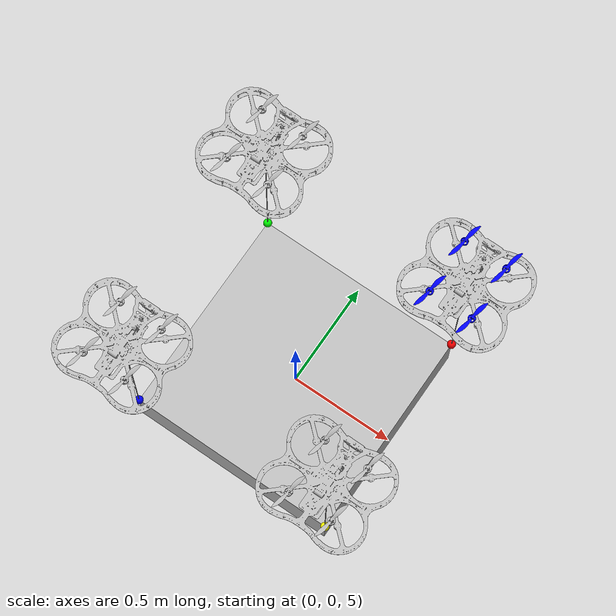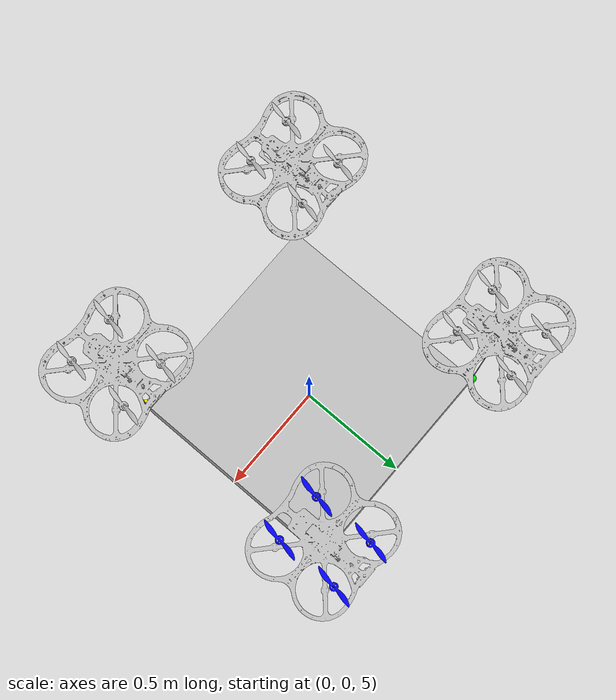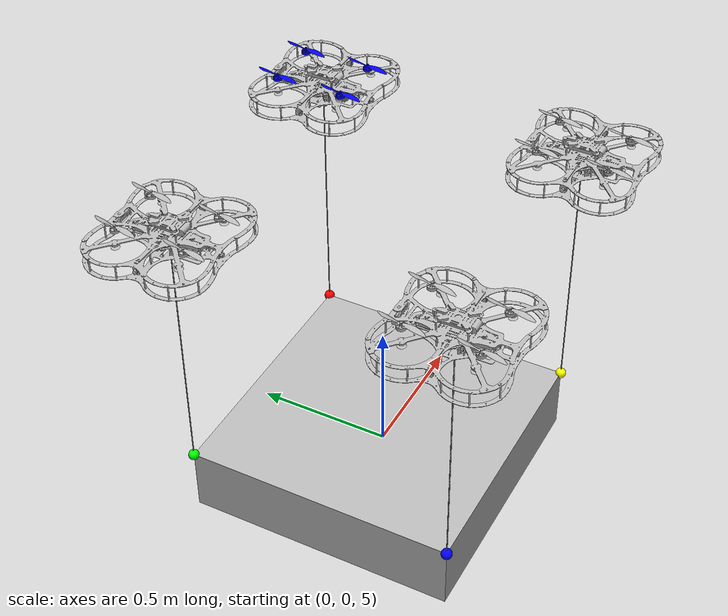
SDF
<sdf version="1.11">
 <world name="coop_transport">
    <!-- Physics: DART -->
    <physics type="dart">
      <max_step_size>0.001</max_step_size>
      <real_time_factor>1.0</real_time_factor>
      <real_time_update_rate>1000</real_time_update_rate>
      <dart>
        <solver><solver_type>dantzig</solver_type></solver>
        <collision_detector>bullet</collision_detector>
      </dart>
    </physics>

    <gravity>0 0 -9.82</gravity>
    <magnetic_field>6e-06 2.3e-05 -4.2e-05</magnetic_field>
    <atmosphere type="adiabatic" />
    <scene>
      <ambient>0.4 0.4 0.4 1</ambient>
      <background>0.7 0.7 0.8 1</background>
      <shadows>false</shadows>
      <sky>
      <sunrise>10</sunrise>
      </sky>
    </scene>
    <light name="sun" type="directional">
      <pose>0 0 10 0 -0 0</pose>
      <cast_shadows>false</cast_shadows>
      <intensity>1</intensity>
      <direction>-0.5 0.1 -0.9</direction>
    </light>
     <light name="lights1" type="directional">
      <pose>0 0 3 0 -0 0</pose>
      <cast_shadows>false</cast_shadows>
      <intensity>1</intensity>
      <direction>0 0 -1</direction>
    </light>
    <light name="lights2" type="directional">
      <pose>1 0 3 0 -0 0</pose>
      <cast_shadows>false</cast_shadows>
      <intensity>1</intensity>
      <direction>0 0 -1</direction>
    </light>

    <light name="lights3" type="directional">
      <pose>-1 0 3 0 -0 0</pose>
      <cast_shadows>false</cast_shadows>
      <intensity>1</intensity>
      <direction>0 0 -1</direction>
    </light>

    <light name="lights4" type="directional">
      <pose>0 1 3 0 -0 0</pose>
      <cast_shadows>false</cast_shadows>
      <intensity>1</intensity>
      <direction>0 0 -1</direction>
    </light>

    <light name="lights5" type="directional">
      <pose>0 1 3 0 -0 0</pose>
      <cast_shadows>false</cast_shadows>
      <intensity>1</intensity>
      <direction>0 0 -1</direction>
    </light>

  <model name="coop_agent">
  <pose>0 0 5.0 0 0 0</pose>
  <self_collide>false</self_collide>
    <static>false</static>
    <enable_wind>1</enable_wind>

    <!-- =========================
         QUADROTOR #1 (at 0.20 0.20 1.9)
         ========================= -->
    <link name="quadrotor1/base_link">
      <pose>0.5  0.5  1.125  0  0  0</pose>
      <inertial>
        <pose>0 0 0 0 0 0</pose>
        <mass>1.52</mass>
        <inertia>
          <ixx>14387108.65e-9</ixx>
          <iyy>16559882.52e-9</iyy>
          <izz>28784890.45e-9</izz>
        </inertia>
      </inertial>
      <collision name="quadrotor1/base_link_inertia_collision_2">
        <pose>0 0 0 0 0 0</pose>
        <geometry><box><size>0.2 0.2 0.05</size></box></geometry>
        <surface><contact><collide_without_contact>1</collide_without_contact></contact></surface>
      </collision>
      <visual name="quadrotor1/base_link_inertia_visual_2">
        <pose>0 0 0 3.1415920000000002 0 0</pose>
        <geometry>
          <mesh>
            <scale>1 1 1</scale>
            <!-- NOTE: ensure meshes are available under this model or fix URI -->
            <uri>model://meshes/QDrone2_Combined.dae</uri>
          </mesh>
        </geometry>
      </visual>
    </link>

    <joint name="quadrotor1/rotor_0_joint" type="revolute">
      <pose relative_to="quadrotor1/base_link">-0.1016 -0.127 0.023 0 0 0</pose>
      <parent>quadrotor1/base_link</parent>
      <child>quadrotor1/rotor_0</child>
      <axis><xyz>0 0 1</xyz><limit><lower>-inf</lower><upper>inf</upper></limit></axis>
    </joint>
    <link name="quadrotor1/rotor_0">
      <pose relative_to="quadrotor1/rotor_0_joint">0 0 0 0 0 0</pose>
      <inertial><pose>0 0 0 0 0 0</pose><mass>0.005</mass>
        <inertia><ixx>1.95e-07</ixx><iyy>3.3340833333333338e-05</iyy><izz>3.3520833333333339e-05</izz></inertia>
      </inertial>
      <collision name="quadrotor1/rotor_0_collision"><geometry><cylinder><length>0.005</length><radius>0.1</radius></cylinder></geometry></collision>
      <visual name="quadrotor1/rotor_0_visual">
        <geometry><mesh><scale>1 1 1</scale><uri>model://meshes/motor_prop_assembly.dae</uri></mesh></geometry>
        <material><ambient>0 0 1 1</ambient><diffuse>0 0 1 1</diffuse><specular>0.1 0.1 0.1 1</specular></material>
      </visual>
    </link>

    <joint name="quadrotor1/rotor_1_joint" type="revolute">
      <pose relative_to="quadrotor1/base_link">0.1016 -0.127 0.023 0 0 0</pose>
      <parent>quadrotor1/base_link</parent>
      <child>quadrotor1/rotor_1</child>
      <axis><xyz>0 0 1</xyz><limit><lower>-inf</lower><upper>inf</upper></limit></axis>
    </joint>
    <link name="quadrotor1/rotor_1">
      <pose relative_to="quadrotor1/rotor_1_joint">0 0 0 0 0 0</pose>
      <inertial><pose>0 0 0 0 0 0</pose><mass>0.005</mass>
        <inertia><ixx>1.95e-07</ixx><iyy>3.3340833333333338e-05</iyy><izz>3.3520833333333339e-05</izz></inertia>
      </inertial>
      <collision name="quadrotor1/rotor_1_collision"><geometry><cylinder><length>0.005</length><radius>0.1</radius></cylinder></geometry></collision>
      <visual name="quadrotor1/rotor_1_visual">
        <geometry><mesh><scale>1 1 1</scale><uri>model://meshes/motor_prop_assembly.dae</uri></mesh></geometry>
        <material><ambient>0 0 1 1</ambient><diffuse>0 0 1 1</diffuse><specular>0.1 0.1 0.1 1</specular></material>
      </visual>
    </link>

    <joint name="quadrotor1/rotor_2_joint" type="revolute">
      <pose relative_to="quadrotor1/base_link">-0.1016 0.127 0.023 0 0 0</pose>
      <parent>quadrotor1/base_link</parent>
      <child>quadrotor1/rotor_2</child>
      <axis><xyz>0 0 1</xyz><limit><lower>-inf</lower><upper>inf</upper></limit></axis>
    </joint>
    <link name="quadrotor1/rotor_2">
      <pose relative_to="quadrotor1/rotor_2_joint">0 0 0 0 0 0</pose>
      <inertial><pose>0 0 0 0 0 0</pose><mass>0.005</mass>
        <inertia><ixx>1.95e-07</ixx><iyy>3.3340833333333338e-05</iyy><izz>3.3520833333333339e-05</izz></inertia>
      </inertial>
      <collision name="quadrotor1/rotor_2_collision"><geometry><cylinder><length>0.005</length><radius>0.1</radius></cylinder></geometry></collision>
      <visual name="quadrotor1/rotor_2_visual">
        <geometry><mesh><scale>1 1 1</scale><uri>model://meshes/motor_prop_assembly.dae</uri></mesh></geometry>
        <material><ambient>0 0 1 1</ambient><diffuse>0 0 1 1</diffuse><specular>0.1 0.1 0.1 1</specular></material>
      </visual>
    </link>

    <joint name="quadrotor1/rotor_3_joint" type="revolute">
      <pose relative_to="quadrotor1/base_link">0.1016 0.127 0.023 0 0 0</pose>
      <parent>quadrotor1/base_link</parent>
      <child>quadrotor1/rotor_3</child>
      <axis><xyz>0 0 1</xyz><limit><lower>-inf</lower><upper>inf</upper></limit></axis>
    </joint>
    <link name="quadrotor1/rotor_3">
      <pose relative_to="quadrotor1/rotor_3_joint">0 0 0 0 0 0</pose>
      <inertial><pose>0 0 0 0 0 0</pose><mass>0.005</mass>
        <inertia><ixx>1.95e-07</ixx><iyy>3.3340833333333338e-05</iyy><izz>3.3520833333333339e-05</izz></inertia>
      </inertial>
      <collision name="quadrotor1/rotor_3_collision"><geometry><cylinder><length>0.005</length><radius>0.1</radius></cylinder></geometry></collision>
      <visual name="quadrotor1/rotor_3_visual">
        <geometry><mesh><scale>1 1 1</scale><uri>model://meshes/motor_prop_assembly.dae</uri></mesh></geometry>
        <material><ambient>0 0 1 1</ambient><diffuse>0 0 1 1</diffuse><specular>0.1 0.1 0.1 1</specular></material>
      </visual>
    </link>

    <plugin name='gz::sim::systems::MultiRotorPlugin' filename='rotor_plugin'>
      <parentLink>quadrotor1/base_link</parentLink>
      <linkNames>quadrotor1/rotor_0 quadrotor1/rotor_1 quadrotor1/rotor_2 quadrotor1/rotor_3</linkNames>
      <turningDirections>1 -1 -1 1</turningDirections>
      <timeConstantUp>0.0005</timeConstantUp>
      <timeConstantDown>0.005</timeConstantDown>
      <maxRotVelocity>2340.0</maxRotVelocity>
      <thrustConstantQuadraticParams>1.9533e-6 0 0</thrustConstantQuadraticParams>

      <groundEffectConstant>1.17198e-09</groundEffectConstant>
      <momentConstantQuadraticParams>2.8400982e-08  0 0</momentConstantQuadraticParams>
      <downWashCoefficients>0.0 0.0 0.0</downWashCoefficients>
      <otherUavNames></otherUavNames>
      <rotorInertia>4.92e-6</rotorInertia>
      <rotorDragCoefficient>0.000020673</rotorDragCoefficient>
      <rollingMomentCoefficient>1e-9</rollingMomentCoefficient>

      <rotorVelocitySlowdownSim>2</rotorVelocitySlowdownSim>

    </plugin>
    <!-- =========================
         QUADROTOR #2 (at -0.20 0.20 1.9)
         ========================= -->
    <link name="quadrotor2/base_link">
       <pose>-0.5  0.5  1.125  0  0  0 </pose>
      <inertial><pose>0 0 0 0 0 0</pose><mass>1.52</mass>
        <inertia><ixx>14387108.65e-9</ixx><iyy>16559882.52e-9</iyy><izz>28784890.45e-9</izz></inertia>
      </inertial>
      <collision name="quadrotor2/base_link_inertia_collision_2">
        <pose>0 0 0 0 0 0</pose>
        <geometry><box><size>0.2 0.2 0.05</size></box></geometry>
        <surface><contact><collide_without_contact>1</collide_without_contact></contact></surface>
      </collision>
      <visual name="quadrotor2/base_link_inertia_visual_2">
        <pose>0 0 0 3.1415920000000002 0 0</pose>
        <geometry><mesh><scale>1 1 1</scale><uri>model://meshes/QDrone2_Combined.dae</uri></mesh></geometry>
      </visual>
    </link>
    <joint name="quadrotor2/rotor_0_joint" type="revolute">
      <pose relative_to="quadrotor2/base_link">-0.1016 -0.127 0.023 0 0 0</pose>
      <parent>quadrotor2/base_link</parent><child>quadrotor2/rotor_0</child>
      <axis><xyz>0 0 1</xyz><limit><lower>-inf</lower><upper>inf</upper></limit></axis>
    </joint>
    <link name="quadrotor2/rotor_0">
      <pose relative_to="quadrotor2/rotor_0_joint">0 0 0 0 0 0</pose>
      <inertial><pose>0 0 0 0 0 0</pose><mass>0.005</mass>
        <inertia><ixx>1.95e-07</ixx><iyy>3.3340833333333338e-05</iyy><izz>3.3520833333333339e-05</izz></inertia>
      </inertial>
      <collision name="quadrotor2/rotor_0_collision"><geometry><cylinder><length>0.005</length><radius>0.1</radius></cylinder></geometry></collision>
      <visual name="quadrotor2/rotor_0_visual"><geometry><mesh><scale>1 1 1</scale><uri>model://meshes/motor_prop_assembly.dae</uri></mesh></geometry></visual>
    </link>
    <joint name="quadrotor2/rotor_1_joint" type="revolute">
      <pose relative_to="quadrotor2/base_link">0.1016 -0.127 0.023 0 0 0</pose>
      <parent>quadrotor2/base_link</parent><child>quadrotor2/rotor_1</child>
      <axis><xyz>0 0 1</xyz><limit><lower>-inf</lower><upper>inf</upper></limit></axis>
    </joint>
    <link name="quadrotor2/rotor_1">
      <pose relative_to="quadrotor2/rotor_1_joint">0 0 0 0 0 0</pose>
      <inertial><pose>0 0 0 0 0 0</pose><mass>0.005</mass>
        <inertia><ixx>1.95e-07</ixx><iyy>3.3340833333333338e-05</iyy><izz>3.3520833333333339e-05</izz></inertia>
      </inertial>
      <collision name="quadrotor2/rotor_1_collision"><geometry><cylinder><length>0.005</length><radius>0.1</radius></cylinder></geometry></collision>
      <visual name="quadrotor2/rotor_1_visual"><geometry><mesh><scale>1 1 1</scale><uri>model://meshes/motor_prop_assembly.dae</uri></mesh></geometry></visual>
    </link>
    <joint name="quadrotor2/rotor_2_joint" type="revolute">
      <pose relative_to="quadrotor2/base_link">-0.1016 0.127 0.023 0 0 0</pose>
      <parent>quadrotor2/base_link</parent><child>quadrotor2/rotor_2</child>
      <axis><xyz>0 0 1</xyz><limit><lower>-inf</lower><upper>inf</upper></limit></axis>
    </joint>
    <link name="quadrotor2/rotor_2">
      <pose relative_to="quadrotor2/rotor_2_joint">0 0 0 0 0 0</pose>
      <inertial><pose>0 0 0 0 0 0</pose><mass>0.005</mass>
        <inertia><ixx>1.95e-07</ixx><iyy>3.3340833333333338e-05</iyy><izz>3.3520833333333339e-05</izz></inertia>
      </inertial>
      <collision name="quadrotor2/rotor_2_collision"><geometry><cylinder><length>0.005</length><radius>0.1</radius></cylinder></geometry></collision>
      <visual name="quadrotor2/rotor_2_visual"><geometry><mesh><scale>1 1 1</scale><uri>model://meshes/motor_prop_assembly.dae</uri></mesh></geometry></visual>
    </link>
    <joint name="quadrotor2/rotor_3_joint" type="revolute">
      <pose relative_to="quadrotor2/base_link">0.1016 0.127 0.023 0 0 0</pose>
      <parent>quadrotor2/base_link</parent><child>quadrotor2/rotor_3</child>
      <axis><xyz>0 0 1</xyz><limit><lower>-inf</lower><upper>inf</upper></limit></axis>
    </joint>
    <link name="quadrotor2/rotor_3">
      <pose relative_to="quadrotor2/rotor_3_joint">0 0 0 0 0 0</pose>
      <inertial><pose>0 0 0 0 0 0</pose><mass>0.005</mass>
        <inertia><ixx>1.95e-07</ixx><iyy>3.3340833333333338e-05</iyy><izz>3.3520833333333339e-05</izz></inertia>
      </inertial>
      <collision name="quadrotor2/rotor_3_collision"><geometry><cylinder><length>0.005</length><radius>0.1</radius></cylinder></geometry></collision>
      <visual name="quadrotor2/rotor_3_visual"><geometry><mesh><scale>1 1 1</scale><uri>model://meshes/motor_prop_assembly.dae</uri></mesh></geometry></visual>
    </link>
    <!-- Plugins for quadrotor #2 -->
    <plugin name='gz::sim::systems::MultiRotorPlugin' filename='rotor_plugin'>
      <parentLink>quadrotor2/base_link</parentLink>
      <linkNames>quadrotor2/rotor_0 quadrotor2/rotor_1 quadrotor2/rotor_2 quadrotor2/rotor_3</linkNames>
      <turningDirections>1 -1 -1 1</turningDirections>
      <timeConstantUp>0.0005</timeConstantUp>
      <timeConstantDown>0.005</timeConstantDown>
      <maxRotVelocity>2340.0</maxRotVelocity>
      <thrustConstantQuadraticParams>1.9533e-6 0 0</thrustConstantQuadraticParams>

      <groundEffectConstant>1.17198e-09</groundEffectConstant>
      <momentConstantQuadraticParams>2.8400982e-08  0 0</momentConstantQuadraticParams>
      <downWashCoefficients>0.0 0.0 0.0</downWashCoefficients>
      <otherUavNames></otherUavNames>
      <rotorInertia>4.92e-6</rotorInertia>
      <rotorDragCoefficient>0.000020673</rotorDragCoefficient>
      <rollingMomentCoefficient>1e-9</rollingMomentCoefficient>

      <rotorVelocitySlowdownSim>2</rotorVelocitySlowdownSim>

    </plugin>
    <!-- =========================
         QUADROTOR #3 (at -0.20 -0.20 1.9)
         ========================= -->
    <link name="quadrotor3/base_link">
     <pose>-0.5  -0.5  1.125  0  0  0</pose>
      <inertial><pose>0 0 0 0 0 0</pose><mass>1.52</mass>
        <inertia><ixx>14387108.65e-9</ixx><iyy>16559882.52e-9</iyy><izz>28784890.45e-9</izz></inertia>
      </inertial>
      <collision name="quadrotor3/base_link_inertia_collision_2">
        <pose>0 0 0 0 0 0</pose>
        <geometry><box><size>0.2 0.2 0.05</size></box></geometry>
        <surface><contact><collide_without_contact>1</collide_without_contact></contact></surface>
      </collision>
      <visual name="quadrotor3/base_link_inertia_visual_2">
        <pose>0 0 0 3.1415920000000002 0 0</pose>
        <geometry><mesh><scale>1 1 1</scale><uri>model://meshes/QDrone2_Combined.dae</uri></mesh></geometry>
      </visual>
    </link>
    <joint name="quadrotor3/rotor_0_joint" type="revolute">
      <pose relative_to="quadrotor3/base_link">-0.1016 -0.127 0.023 0 0 0</pose>
      <parent>quadrotor3/base_link</parent><child>quadrotor3/rotor_0</child>
      <axis><xyz>0 0 1</xyz><limit><lower>-inf</lower><upper>inf</upper></limit></axis>
    </joint>
    <link name="quadrotor3/rotor_0">
      <pose relative_to="quadrotor3/rotor_0_joint">0 0 0 0 0 0</pose>
      <inertial><pose>0 0 0 0 0 0</pose><mass>0.005</mass>
        <inertia><ixx>1.95e-07</ixx><iyy>3.3340833333333338e-05</iyy><izz>3.3520833333333339e-05</izz></inertia>
      </inertial>
      <collision name="quadrotor3/rotor_0_collision"><geometry><cylinder><length>0.005</length><radius>0.1</radius></cylinder></geometry></collision>
      <visual name="quadrotor3/rotor_0_visual"><geometry><mesh><scale>1 1 1</scale><uri>model://meshes/motor_prop_assembly.dae</uri></mesh></geometry></visual>
    </link>
    <joint name="quadrotor3/rotor_1_joint" type="revolute">
      <pose relative_to="quadrotor3/base_link">0.1016 -0.127 0.023 0 0 0</pose>
      <parent>quadrotor3/base_link</parent><child>quadrotor3/rotor_1</child>
      <axis><xyz>0 0 1</xyz><limit><lower>-inf</lower><upper>inf</upper></limit></axis>
    </joint>
    <link name="quadrotor3/rotor_1">
      <pose relative_to="quadrotor3/rotor_1_joint">0 0 0 0 0 0</pose>
      <inertial><pose>0 0 0 0 0 0</pose><mass>0.005</mass>
        <inertia><ixx>1.95e-07</ixx><iyy>3.3340833333333338e-05</iyy><izz>3.3520833333333339e-05</izz></inertia>
      </inertial>
      <collision name="quadrotor3/rotor_1_collision"><geometry><cylinder><length>0.005</length><radius>0.1</radius></cylinder></geometry></collision>
      <visual name="quadrotor3/rotor_1_visual"><geometry><mesh><scale>1 1 1</scale><uri>model://meshes/motor_prop_assembly.dae</uri></mesh></geometry></visual>
    </link>
    <joint name="quadrotor3/rotor_2_joint" type="revolute">
      <pose relative_to="quadrotor3/base_link">-0.1016 0.127 0.023 0 0 0</pose>
      <parent>quadrotor3/base_link</parent><child>quadrotor3/rotor_2</child>
      <axis><xyz>0 0 1</xyz><limit><lower>-inf</lower><upper>inf</upper></limit></axis>
    </joint>
    <link name="quadrotor3/rotor_2">
      <pose relative_to="quadrotor3/rotor_2_joint">0 0 0 0 0 0</pose>
      <inertial><pose>0 0 0 0 0 0</pose><mass>0.005</mass>
        <inertia><ixx>1.95e-07</ixx><iyy>3.3340833333333338e-05</iyy><izz>3.3520833333333339e-05</izz></inertia>
      </inertial>
      <collision name="quadrotor3/rotor_2_collision"><geometry><cylinder><length>0.005</length><radius>0.1</radius></cylinder></geometry></collision>
      <visual name="quadrotor3/rotor_2_visual"><geometry><mesh><scale>1 1 1</scale><uri>model://meshes/motor_prop_assembly.dae</uri></mesh></geometry></visual>
    </link>
    <joint name="quadrotor3/rotor_3_joint" type="revolute">
      <pose relative_to="quadrotor3/base_link">0.1016 0.127 0.023 0 0 0</pose>
      <parent>quadrotor3/base_link</parent><child>quadrotor3/rotor_3</child>
      <axis><xyz>0 0 1</xyz><limit><lower>-inf</lower><upper>inf</upper></limit></axis>
    </joint>
    <link name="quadrotor3/rotor_3">
      <pose relative_to="quadrotor3/rotor_3_joint">0 0 0 0 0 0</pose>
      <inertial><pose>0 0 0 0 0 0</pose><mass>0.005</mass>
        <inertia><ixx>1.95e-07</ixx><iyy>3.3340833333333338e-05</iyy><izz>3.3520833333333339e-05</izz></inertia>
      </inertial>
      <collision name="quadrotor3/rotor_3_collision"><geometry><cylinder><length>0.005</length><radius>0.1</radius></cylinder></geometry></collision>
      <visual name="quadrotor3/rotor_3_visual"><geometry><mesh><scale>1 1 1</scale><uri>model://meshes/motor_prop_assembly.dae</uri></mesh></geometry></visual>
    </link>
    <!-- Plugins for quadrotor #3 -->
    <plugin name='gz::sim::systems::MultiRotorPlugin' filename='rotor_plugin'>
      <parentLink>quadrotor3/base_link</parentLink>
      <linkNames>quadrotor3/rotor_0 quadrotor3/rotor_1 quadrotor3/rotor_2 quadrotor3/rotor_3</linkNames>
      <turningDirections>1 -1 -1 1</turningDirections>
      <timeConstantUp>0.0005</timeConstantUp>
      <timeConstantDown>0.005</timeConstantDown>
      <maxRotVelocity>2340.0</maxRotVelocity>
      <thrustConstantQuadraticParams>1.9533e-6 0 0</thrustConstantQuadraticParams>

      <groundEffectConstant>1.17198e-09</groundEffectConstant>
      <momentConstantQuadraticParams>2.8400982e-08  0 0</momentConstantQuadraticParams>
      <downWashCoefficients>0.0 0.0 0.0</downWashCoefficients>
      <otherUavNames></otherUavNames>
      <rotorInertia>4.92e-6</rotorInertia>
      <rotorDragCoefficient>0.000020673</rotorDragCoefficient>
      <rollingMomentCoefficient>1e-9</rollingMomentCoefficient>

      <rotorVelocitySlowdownSim>2</rotorVelocitySlowdownSim>

    </plugin>
    <!-- =========================
         QUADROTOR #4 (at 0.20 -0.20 1.9)
         ========================= -->
    <link name="quadrotor4/base_link">
      <pose>0.5  -0.5  1.125  0  0  0</pose>
      <inertial><pose>0 0 0 0 0 0</pose><mass>1.52</mass>
        <inertia><ixx>14387108.65e-9</ixx><iyy>16559882.52e-9</iyy><izz>28784890.45e-9</izz></inertia>
      </inertial>
      <collision name="quadrotor4/base_link_inertia_collision_2">
        <pose>0 0 0 0 0 0</pose>
        <geometry><box><size>0.2 0.2 0.05</size></box></geometry>
        <surface><contact><collide_without_contact>1</collide_without_contact></contact></surface>
      </collision>
      <visual name="quadrotor4/base_link_inertia_visual_2">
        <pose>0 0 0 3.1415920000000002 0 0</pose>
        <geometry><mesh><scale>1 1 1</scale><uri>model://meshes/QDrone2_Combined.dae</uri></mesh></geometry>
      </visual>
    </link>
    <joint name="quadrotor4/rotor_0_joint" type="revolute">
      <pose relative_to="quadrotor4/base_link">-0.1016 -0.127 0.023 0 0 0</pose>
      <parent>quadrotor4/base_link</parent><child>quadrotor4/rotor_0</child>
      <axis><xyz>0 0 1</xyz><limit><lower>-inf</lower><upper>inf</upper></limit></axis>
    </joint>
    <link name="quadrotor4/rotor_0">
      <pose relative_to="quadrotor4/rotor_0_joint">0 0 0 0 0 0</pose>
      <inertial><pose>0 0 0 0 0 0</pose><mass>0.005</mass>
        <inertia><ixx>1.95e-07</ixx><iyy>3.3340833333333338e-05</iyy><izz>3.3520833333333339e-05</izz></inertia>
      </inertial>
      <collision name="quadrotor4/rotor_0_collision"><geometry><cylinder><length>0.005</length><radius>0.1</radius></cylinder></geometry></collision>
      <visual name="quadrotor4/rotor_0_visual"><geometry><mesh><scale>1 1 1</scale><uri>model://meshes/motor_prop_assembly.dae</uri></mesh></geometry></visual>
    </link>
    <joint name="quadrotor4/rotor_1_joint" type="revolute">
      <pose relative_to="quadrotor4/base_link">0.1016 -0.127 0.023 0 0 0</pose>
      <parent>quadrotor4/base_link</parent><child>quadrotor4/rotor_1</child>
      <axis><xyz>0 0 1</xyz><limit><lower>-inf</lower><upper>inf</upper></limit></axis>
    </joint>
    <link name="quadrotor4/rotor_1">
      <pose relative_to="quadrotor4/rotor_1_joint">0 0 0 0 0 0</pose>
      <inertial><pose>0 0 0 0 0 0</pose><mass>0.005</mass>
        <inertia><ixx>1.95e-07</ixx><iyy>3.3340833333333338e-05</iyy><izz>3.3520833333333339e-05</izz></inertia>
      </inertial>
      <collision name="quadrotor4/rotor_1_collision"><geometry><cylinder><length>0.005</length><radius>0.1</radius></cylinder></geometry></collision>
      <visual name="quadrotor4/rotor_1_visual"><geometry><mesh><scale>1 1 1</scale><uri>model://meshes/motor_prop_assembly.dae</uri></mesh></geometry></visual>
    </link>
    <joint name="quadrotor4/rotor_2_joint" type="revolute">
      <pose relative_to="quadrotor4/base_link">-0.1016 0.127 0.023 0 0 0</pose>
      <parent>quadrotor4/base_link</parent><child>quadrotor4/rotor_2</child>
      <axis><xyz>0 0 1</xyz><limit><lower>-inf</lower><upper>inf</upper></limit></axis>
    </joint>
    <link name="quadrotor4/rotor_2">
      <pose relative_to="quadrotor4/rotor_2_joint">0 0 0 0 0 0</pose>
      <inertial><pose>0 0 0 0 0 0</pose><mass>0.005</mass>
        <inertia><ixx>1.95e-07</ixx><iyy>3.3340833333333338e-05</iyy><izz>3.3520833333333339e-05</izz></inertia>
      </inertial>
      <collision name="quadrotor4/rotor_2_collision"><geometry><cylinder><length>0.005</length><radius>0.1</radius></cylinder></geometry></collision>
      <visual name="quadrotor4/rotor_2_visual"><geometry><mesh><scale>1 1 1</scale><uri>model://meshes/motor_prop_assembly.dae</uri></mesh></geometry></visual>
    </link>
    <joint name="quadrotor4/rotor_3_joint" type="revolute">
      <pose relative_to="quadrotor4/base_link">0.1016 0.127 0.023 0 0 0</pose>
      <parent>quadrotor4/base_link</parent><child>quadrotor4/rotor_3</child>
      <axis><xyz>0 0 1</xyz><limit><lower>-inf</lower><upper>inf</upper></limit></axis>
    </joint>
    <link name="quadrotor4/rotor_3">
      <pose relative_to="quadrotor4/rotor_3_joint">0 0 0 0 0 0</pose>
      <inertial><pose>0 0 0 0 0 0</pose><mass>0.005</mass>
        <inertia><ixx>1.95e-07</ixx><iyy>3.3340833333333338e-05</iyy><izz>3.3520833333333339e-05</izz></inertia>
      </inertial>
      <collision name="quadrotor4/rotor_3_collision"><geometry><cylinder><length>0.005</length><radius>0.1</radius></cylinder></geometry></collision>
      <visual name="quadrotor4/rotor_3_visual"><geometry><mesh><scale>1 1 1</scale><uri>model://meshes/motor_prop_assembly.dae</uri></mesh></geometry></visual>
    </link>
    <!-- Plugins for quadrotor #4 -->
  <plugin name='gz::sim::systems::MultiRotorPlugin' filename='rotor_plugin'>
      <parentLink>quadrotor4/base_link</parentLink>
      <linkNames>quadrotor4/rotor_0 quadrotor4/rotor_1 quadrotor4/rotor_2 quadrotor4/rotor_3</linkNames>
      <turningDirections>1 -1 -1 1</turningDirections>
      <timeConstantUp>0.0005</timeConstantUp>
      <timeConstantDown>0.005</timeConstantDown>
      <maxRotVelocity>2340.0</maxRotVelocity>
      <thrustConstantQuadraticParams>1.9533e-6 0 0</thrustConstantQuadraticParams>

      <groundEffectConstant>1.17198e-09</groundEffectConstant>
      <momentConstantQuadraticParams>2.8400982e-08  0 0</momentConstantQuadraticParams>
      <downWashCoefficients>0.0 0.0 0.0</downWashCoefficients>
      <otherUavNames></otherUavNames>
      <rotorInertia>4.92e-6</rotorInertia>
      <rotorDragCoefficient>0.000020673</rotorDragCoefficient>
      <rollingMomentCoefficient>1e-9</rollingMomentCoefficient>

      <rotorVelocitySlowdownSim>2</rotorVelocitySlowdownSim>

    </plugin>
    <!-- =========================
         PAYLOAD (links only; origin frame below)
         ========================= -->
    <frame name="payload_base" attached_to="__model__">
      <pose>0 0 0.0 0 0 0</pose>
    </frame>

    <link name="payload_box_link">
      <pose relative_to="payload_base">0 0 0 0 0 0</pose>
      <inertial>
        <mass>0.5</mass>
        <inertia><ixx>0.04427</ixx><iyy>0.04427</iyy><izz>0.083</izz></inertia>
      </inertial>
      <collision name="payload_col"><geometry><box><size>1.0 1.0 0.25</size></box></geometry></collision>
      <visual name="payload_vis"><geometry><box><size>1.0 1.0 0.25</size></box></geometry></visual>
    </link>

    <link name="corner1">
      <pose relative_to="payload_base">0.5 0.5 0.125 0 0 0</pose>
      <inertial><mass>0.001</mass><inertia><ixx>1e-6</ixx><iyy>1e-6</iyy><izz>1e-6</izz></inertia></inertial>
      <visual name="vis_corner1"><geometry><sphere><radius>0.02</radius></sphere></geometry><material><ambient>1 0 0 1</ambient></material></visual>
    </link>
    <link name="corner2">
      <pose relative_to="payload_base">-0.5 0.5 0.125 0 0 0</pose>
      <inertial><mass>0.001</mass><inertia><ixx>1e-6</ixx><iyy>1e-6</iyy><izz>1e-6</izz></inertia></inertial>
      <visual name="vis_corner2"><geometry><sphere><radius>0.02</radius></sphere></geometry><material><ambient>0 1 0 1</ambient></material></visual>
    </link>
    <link name="corner3">
      <pose relative_to="payload_base">-0.5 -0.5 0.125 0 0 0</pose>
      <inertial><mass>0.001</mass><inertia><ixx>1e-6</ixx><iyy>1e-6</iyy><izz>1e-6</izz></inertia></inertial>
      <visual name="vis_corner3"><geometry><sphere><radius>0.02</radius></sphere></geometry><material><ambient>0 0 1 1</ambient></material></visual>
    </link>
    <link name="corner4">
      <pose relative_to="payload_base">0.5 -0.5 0.125 0 0 0</pose>
      <inertial><mass>0.001</mass><inertia><ixx>1e-6</ixx><iyy>1e-6</iyy><izz>1e-6</izz></inertia></inertial>
      <visual name="vis_corner4"><geometry><sphere><radius>0.02</radius></sphere></geometry><material><ambient>1 1 0 1</ambient></material></visual>

    </link>
<joint name="corner1_to_payload" type="fixed">
      <parent>payload_box_link</parent>
      <child>corner1</child>
    </joint>
    <joint name="corner2_to_payload" type="fixed">
      <parent>payload_box_link</parent>
      <child>corner2</child>
    </joint>
    <joint name="corner3_to_payload" type="fixed">
      <parent>payload_box_link</parent>
      <child>corner3</child>
    </joint>
    <joint name="corner4_to_payload" type="fixed">
      <parent>payload_box_link</parent>
      <child>corner4</child>
    </joint>
    <!-- =========================
         TETHERS (as links)
         ========================= -->
    <link name="tether1_link">
      <pose>0.5  0.5  0.625  0  0  0</pose>
      <inertial><mass>0.006</mass><inertia><ixx>5e-4</ixx><iyy>5e-4</iyy><izz>1.20e-8</izz></inertia></inertial>
      <collision name="tether1_col">
        <geometry><cylinder><radius>0.002</radius><length>1</length></cylinder></geometry>
        <surface><contact><collide_bitmask>0x00</collide_bitmask></contact></surface>
      </collision>
      <visual name="tether1_vis">
        <geometry><cylinder><radius>0.002</radius><length>1</length></cylinder></geometry>
      </visual>
    </link>

    <link name="tether2_link">
      <pose>-0.5  0.5  0.625  0  0  0</pose>
      <inertial><mass>0.006</mass><inertia><ixx>5e-4</ixx><iyy>5e-4</iyy><izz>1.20e-8</izz></inertia></inertial>
      <collision name="tether2_col"><geometry><cylinder><radius>0.002</radius><length>1</length></cylinder></geometry><surface><contact><collide_bitmask>0x00</collide_bitmask></contact></surface></collision>
      <visual name="tether2_vis"><geometry><cylinder><radius>0.002</radius><length>1</length></cylinder></geometry></visual>
    </link>

    <link name="tether3_link">
      <pose>-0.5  -0.5  0.625  0  0  0</pose>
      <inertial><mass>0.006</mass><inertia><ixx>5e-4</ixx><iyy>5e-4</iyy><izz>1.20e-8</izz></inertia></inertial>
      <collision name="tether3_col"><geometry><cylinder><radius>0.002</radius><length>1</length></cylinder></geometry><surface><contact><collide_bitmask>0x00</collide_bitmask></contact></surface></collision>
      <visual name="tether3_vis"><geometry><cylinder><radius>0.002</radius><length>1</length></cylinder></geometry></visual>
    </link>

    <link name="tether4_link">
      <pose>0.5  -0.5  0.625  0  0  0</pose>
      <inertial><mass>0.006</mass><inertia><ixx>5e-4</ixx><iyy>5e-4</iyy><izz>1.20e-8</izz></inertia></inertial>
      <collision name="tether4_col"><geometry><cylinder><radius>0.002</radius><length>1</length></cylinder></geometry><surface><contact><collide_bitmask>0x00</collide_bitmask></contact></surface></collision>
      <visual name="tether4_vis"><geometry><cylinder><radius>0.002</radius><length>1</length></cylinder></geometry></visual>
    </link>

    <!-- =========================
         BALL JOINTS (top/bottom per tether)
         ========================= -->
    <!-- Tether 1 -->
    <joint name="t1_top" type="ball">
      <child>quadrotor1/base_link</child>
      <parent>tether1_link</parent>
      <pose relative_to="tether1_link">0 0 0.5 0 0 0</pose>
    </joint>
    <joint name="t1_bottom" type="fixed">
      <child>tether1_link</child>
      <parent>corner1</parent>
      <pose relative_to="tether1_link">0 0 -0.5 0 0 0</pose>
    </joint>

    <!-- Tether 2 -->
    <joint name="t2_top" type="ball">
      <child>quadrotor2/base_link</child>
      <parent>tether2_link</parent>
      <pose relative_to="tether2_link">0 0 0.5 0 0 0</pose>
    </joint>
    <joint name="t2_bottom" type="fixed">
      <child>tether2_link</child>
      <parent>corner2</parent>
      <pose relative_to="tether2_link">0 0 -0.5 0 0 0</pose>
    </joint>

    <!-- Tether 3 -->
    <joint name="t3_top" type="ball">
      <child>quadrotor3/base_link</child>
      <parent>tether3_link</parent>
      <pose relative_to="tether3_link">0 0 0.5 0 0 0</pose>
    </joint>
    <joint name="t3_bottom" type="fixed">
      <child>tether3_link</child>
      <parent>corner3</parent>
      <pose relative_to="tether3_link">0 0 -0.5 0 0 0</pose>
    </joint>

    <!-- Tether 4 -->
    <joint name="t4_top" type="ball">
      <child>quadrotor4/base_link</child>
      <parent>tether4_link</parent>
      <pose relative_to="tether4_link">0 0 0.5 0 0 0</pose>
    </joint>
    <joint name="t4_bottom" type="fixed">
      <child>tether4_link</child>
      <parent>corner4</parent>
      <pose relative_to="tether4_link">0 0 -0.5 0 0 0</pose>
    </joint>

  </model>

  </world>
</sdf>
